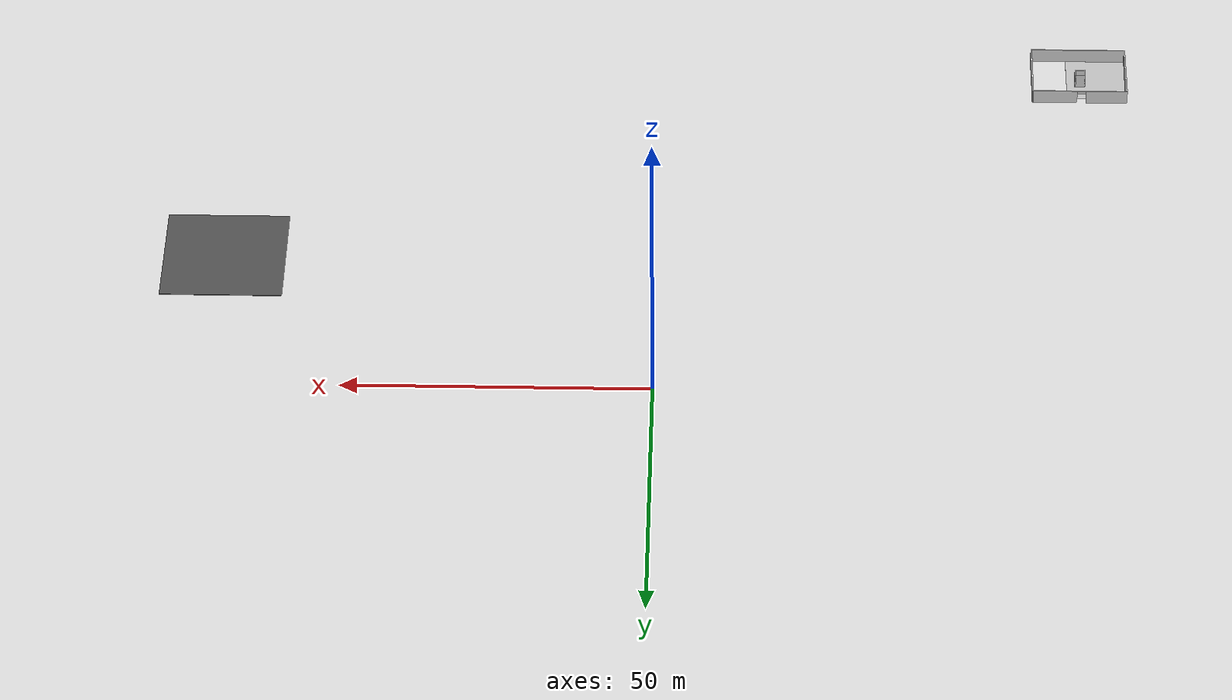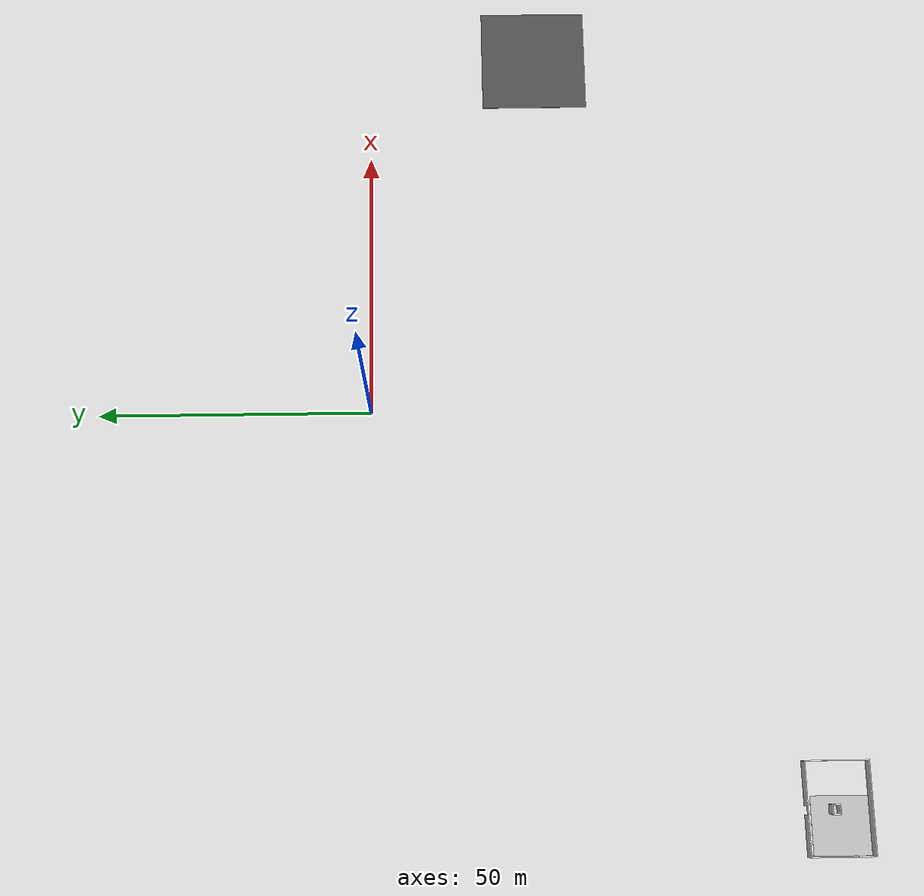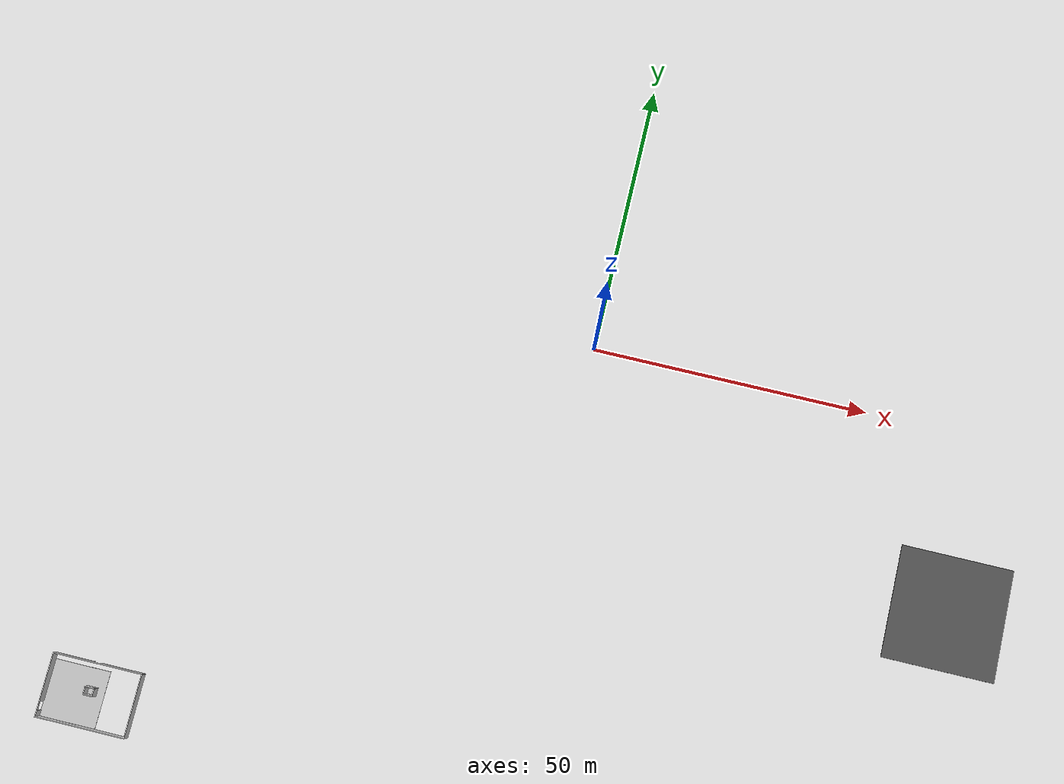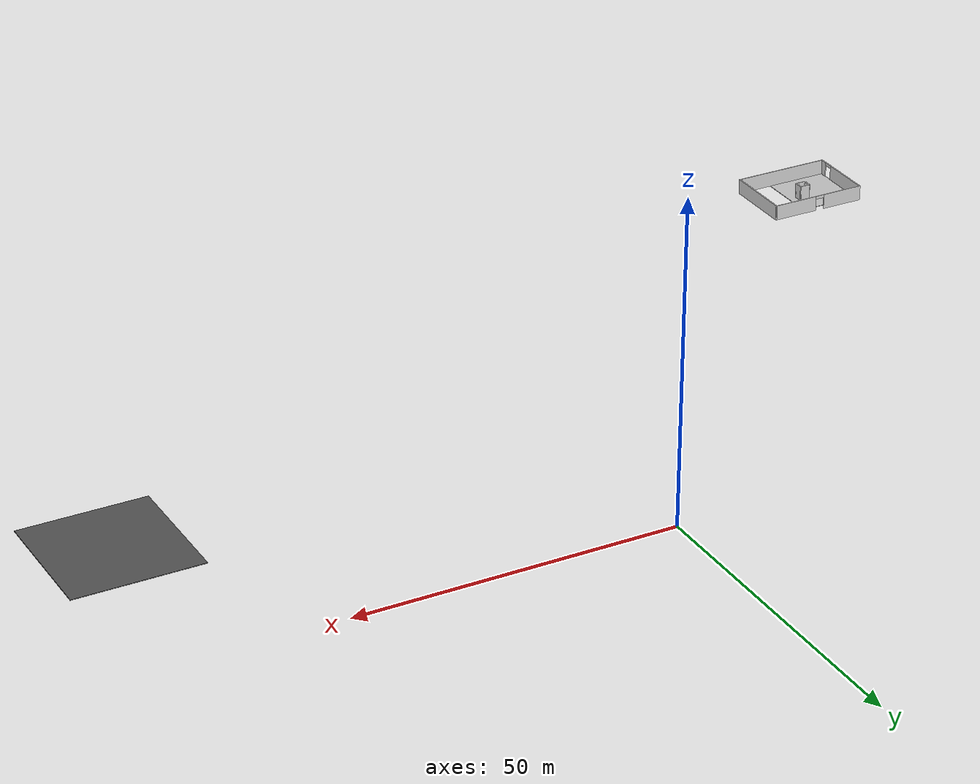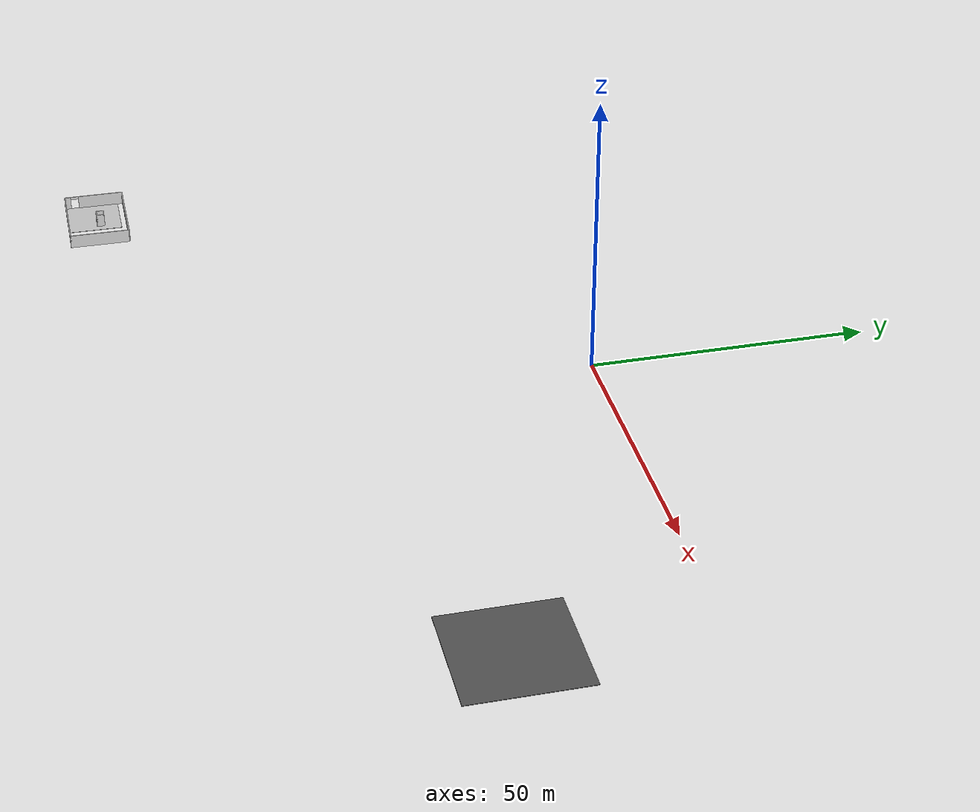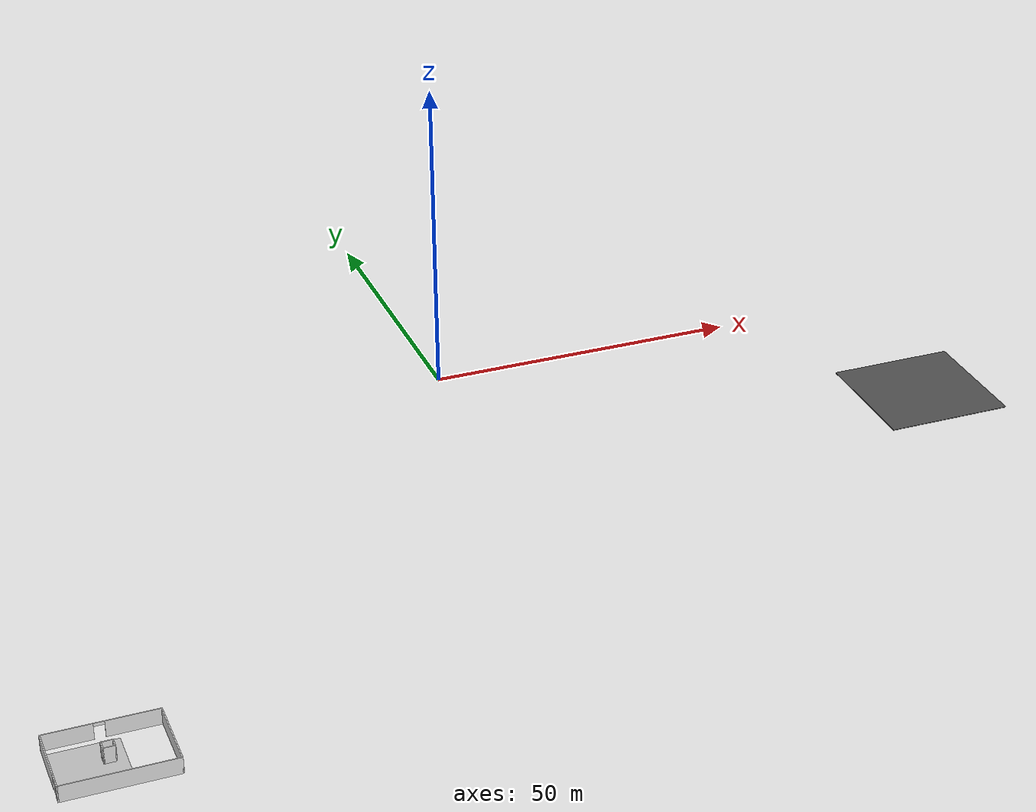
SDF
<sdf version="1.6">
 <world name="default">
  <model name="office1">
   <pose>-70.8387 -79.6403 0 0 -0 0</pose>
   <link name="Wall_11">
    <pose>-7.925 0 0 0 0 -1.5708</pose>
    <visual name="Wall_11_Visual_0">
     <pose>-1.33407 0 1.25 0 -0 0</pose>
     <geometry><box><size>8.58187 0.15 2.5</size></box></geometry>
     <material>
      <script>
       <uri>model://office_env/materials/scripts</uri>
       <uri>model://office_env/materials/textures</uri>
       <name>wall</name>
      </script>
      <ambient>1 1 1 1</ambient>
     </material>
    </visual>
    <collision name="Wall_11_Collision_0">
     <geometry><box><size>8.58187 0.15 2.5</size></box></geometry>
     <pose>-1.33407 0 1.25 0 -0 0</pose>
    </collision>
    <visual name="Wall_11_Visual_1">
     <pose>5.04094 0 1.25 0 -0 0</pose>
     <geometry><box><size>1.16813 0.15 2.5</size></box></geometry>
     <material>
      <script>
       <uri>model://office_env/materials/scripts</uri>
       <uri>model://office_env/materials/textures</uri>
       <name>wall</name>
      </script>
      <ambient>1 1 1 1</ambient>
     </material>
    </visual>
    <collision name="Wall_11_Collision_1">
     <geometry><box><size>1.16813 0.15 2.5</size></box></geometry>
     <pose>5.04094 0 1.25 0 -0 0</pose>
    </collision>
    <visual name="Wall_11_Visual_2">
     <pose>3.70687 0 2.25 0 -0 0</pose>
     <geometry><box><size>1.5 0.15 0.5</size></box></geometry>
     <material>
      <script>
       <uri>model://office_env/materials/scripts</uri>
       <uri>model://office_env/materials/textures</uri>
       <name>wall</name>
      </script>
      <ambient>1 1 1 1</ambient>
     </material>
    </visual>
    <collision name="Wall_11_Collision_2">
     <geometry><box><size>1.5 0.15 0.5</size></box></geometry>
     <pose>3.70687 0 2.25 0 -0 0</pose>
    </collision>
   </link>
   <link name="Wall_12">
    <collision name="Wall_12_Collision">
     <geometry><box><size>16 0.15 2.5</size></box></geometry>
     <pose>0 0 1.25 0 -0 0</pose>
    </collision>
    <visual name="Wall_12_Visual">
     <pose>0 0 1.25 0 -0 0</pose>
     <geometry><box><size>16 0.15 2.5</size></box></geometry>
     <material>
      <script>
       <uri>model://office_env/materials/scripts</uri>
       <uri>model://office_env/materials/textures</uri>
       <name>wall</name>
      </script>
      <ambient>1 1 1 1</ambient>
     </material>
    </visual>
    <pose>0 -5.55 0 0 -0 0</pose>
   </link>
   <link name="Wall_13">
    <collision name="Wall_13_Collision">
     <geometry><box><size>11.25 0.15 2.5</size></box></geometry>
     <pose>0 0 1.25 0 -0 0</pose>
    </collision>
    <visual name="Wall_13_Visual">
     <pose>0 0 1.25 0 -0 0</pose>
     <geometry><box><size>11.25 0.15 2.5</size></box></geometry>
     <material>
      <script>
       <uri>model://office_env/materials/scripts</uri>
       <uri>model://office_env/materials/textures</uri>
       <name>wall</name>
      </script>
      <ambient>1 1 1 1</ambient>
     </material>
    </visual>
    <pose>7.925 0 0 0 -0 1.5708</pose>
   </link>
   <link name="Wall_14">
    <pose>0 5.55 0 0 -0 3.14159</pose>
    <visual name="Wall_14_Visual_0">
     <pose>-4.22963 0 1.25 0 -0 0</pose>
     <geometry><box><size>7.54074 0.15 2.5</size></box></geometry>
     <material>
      <script>
       <uri>model://office_env/materials/scripts</uri>
       <uri>model://office_env/materials/textures</uri>
       <name>wall</name>
      </script>
      <ambient>1 1 1 1</ambient>
     </material>
    </visual>
    <collision name="Wall_14_Collision_0">
     <geometry><box><size>7.54074 0.15 2.5</size></box></geometry>
     <pose>-4.22963 0 1.25 0 -0 0</pose>
    </collision>
    <visual name="Wall_14_Visual_1">
     <pose>4.52037 0 1.25 0 -0 0</pose>
     <geometry><box><size>6.95926 0.15 2.5</size></box></geometry>
     <material>
      <script>
       <uri>model://office_env/materials/scripts</uri>
       <uri>model://office_env/materials/textures</uri>
       <name>wall</name>
      </script>
      <ambient>1 1 1 1</ambient>
     </material>
    </visual>
    <collision name="Wall_14_Collision_1">
     <geometry><box><size>6.95926 0.15 2.5</size></box></geometry>
     <pose>4.52037 0 1.25 0 -0 0</pose>
    </collision>
    <visual name="Wall_14_Visual_2">
     <pose>0.290743 0 2.25 0 -0 0</pose>
     <geometry><box><size>1.5 0.15 0.5</size></box></geometry>
     <material>
      <script>
       <uri>model://office_env/materials/scripts</uri>
       <uri>model://office_env/materials/textures</uri>
       <name>wall</name>
      </script>
      <ambient>1 1 1 1</ambient>
     </material>
    </visual>
    <collision name="Wall_14_Collision_2">
     <geometry><box><size>1.5 0.15 0.5</size></box></geometry>
     <pose>0.290743 0 2.25 0 -0 0</pose>
    </collision>
   </link>
   <link name="Wall_16">
    <collision name="Wall_16_Collision">
     <geometry><box><size>1.5 0.15 2.5</size></box></geometry>
     <pose>0 0 1.25 0 -0 0</pose>
    </collision>
    <visual name="Wall_16_Visual">
     <pose>0 0 1.25 0 -0 0</pose>
     <geometry><box><size>1.5 0.15 2.5</size></box></geometry>
     <material>
      <script>
       <uri>model://office_env/materials/scripts</uri>
       <uri>model://office_env/materials/textures</uri>
       <name>wall</name>
      </script>
      <ambient>1 1 1 1</ambient>
     </material>
    </visual>
    <pose>-0.982348 0.645568 0 0 0 -1.5708</pose>
   </link>
   <link name="Wall_17">
    <collision name="Wall_17_Collision">
     <geometry><box><size>1.75 0.15 2.5</size></box></geometry>
     <pose>0 0 1.25 0 -0 0</pose>
    </collision>
    <visual name="Wall_17_Visual">
     <pose>0 0 1.25 0 -0 0</pose>
     <geometry><box><size>1.75 0.15 2.5</size></box></geometry>
     <material>
      <script>
       <uri>model://office_env/materials/scripts</uri>
       <uri>model://office_env/materials/textures</uri>
       <name>wall</name>
      </script>
      <ambient>1 1 1 1</ambient>
     </material>
    </visual>
    <pose>-0.182348 -0.029432 0 0 -0 0</pose>
   </link>
   <link name="Wall_18">
    <collision name="Wall_18_Collision">
     <geometry><box><size>1.5 0.15 2.5</size></box></geometry>
     <pose>0 0 1.25 0 -0 0</pose>
    </collision>
    <visual name="Wall_18_Visual">
     <pose>0 0 1.25 0 -0 0</pose>
     <geometry><box><size>1.5 0.15 2.5</size></box></geometry>
     <material>
      <script>
       <uri>model://office_env/materials/scripts</uri>
       <uri>model://office_env/materials/textures</uri>
       <name>wall</name>
      </script>
      <ambient>1 1 1 1</ambient>
     </material>
    </visual>
    <pose>0.617652 0.645568 0 0 -0 1.5708</pose>
   </link>
   <link name="Wall_19">
    <collision name="Wall_19_Collision">
     <geometry><box><size>1.75 0.15 2.5</size></box></geometry>
     <pose>0 0 1.25 0 -0 0</pose>
    </collision>
    <visual name="Wall_19_Visual">
     <pose>0 0 1.25 0 -0 0</pose>
     <geometry><box><size>1.75 0.15 2.5</size></box></geometry>
     <material>
      <script>
       <uri>model://office_env/materials/scripts</uri>
       <uri>model://office_env/materials/textures</uri>
       <name>wall</name>
      </script>
      <ambient>1 1 1 1</ambient>
     </material>
    </visual>
    <pose>-0.182348 1.32057 0 0 -0 3.14159</pose>
   </link>
   <static>1</static>
  </model>
  <model name="asphalt_plane">
   <static>1</static>
   <link name="link">
    <collision name="collision"><geometry><box><size>20 20 0.1</size></box></geometry></collision>
    <visual name="visual">
     <cast_shadows>0</cast_shadows>
     <geometry><box><size>20 20 0.1</size></box></geometry>
     <material>
      <script>
       <uri>model://asphalt_plane/materials/scripts</uri>
       <uri>model://asphalt_plane/materials/textures</uri>
       <name>vrc/asphalt</name>
      </script>
     </material>
    </visual>
   </link>
   <pose>70.7475 -31.5972 0 0 -0 0</pose>
  </model>
  <model name="Floor_23">
   <link name="main">
    <pose>0 0 0.01 0 -0 0</pose>
    <collision name="main_Collision"><geometry><box><size>10 10 0.05</size></box></geometry></collision>
    <visual name="main_Visual">
     <geometry><box><size>10 10 0.05</size></box></geometry>
     <material>
      <script>
       <uri>model://Floor_small/materials/scripts</uri>
       <uri>model://Floor_small/materials/textures</uri>
       <name>floor</name>
      </script>
     </material>
    </visual>
   </link>
   <static>1</static>
   <pose>-73.7752 -80.1087 0 0 -0 0</pose>
  </model>
 </world>
</sdf>
